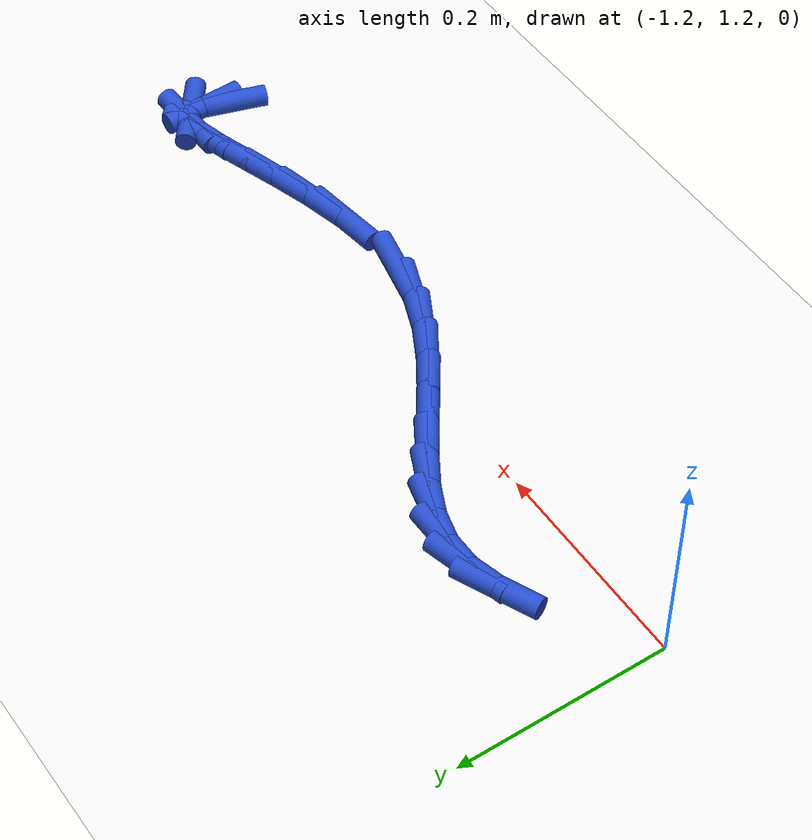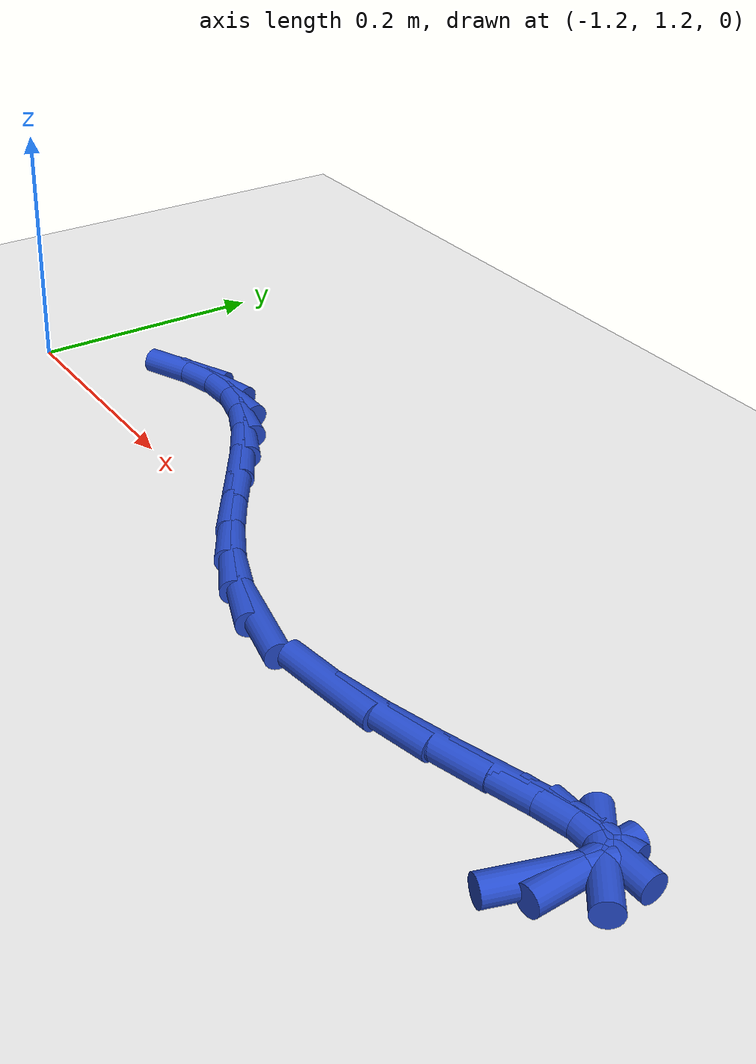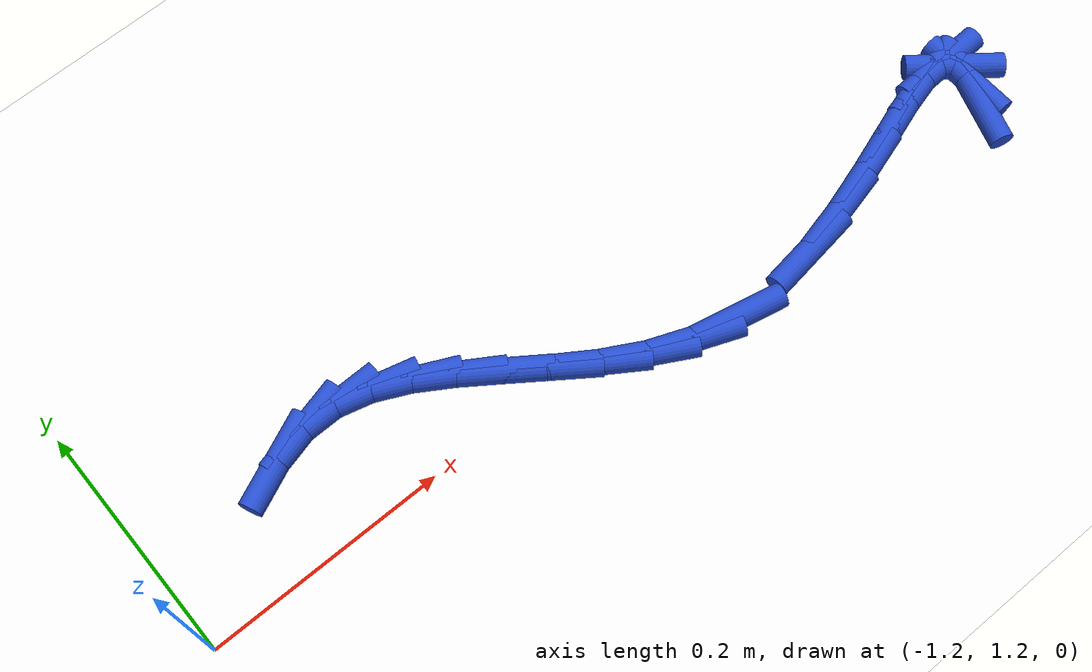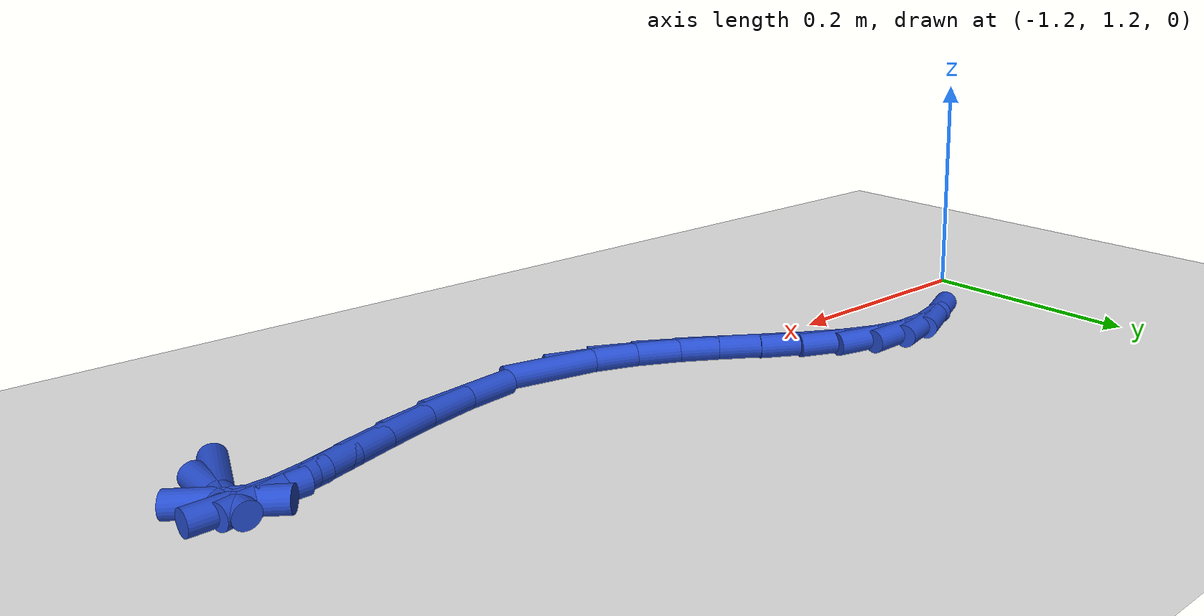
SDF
<sdf version="1.6">
 <world name="default">
  <model name="ground_plane">
   <static>1</static>
   <link name="link">
    <collision name="collision">
     <geometry><plane><normal>0 0 1</normal><size>100 100</size></plane></geometry>
     <surface><friction><ode><mu>100</mu><mu2>50</mu2></ode></friction></surface>
    </collision>
    <visual name="visual">
     <cast_shadows>0</cast_shadows>
     <geometry><plane><normal>0 0 1</normal><size>100 100</size></plane></geometry>
     <material>
      <script><uri>file://media/materials/scripts/gazebo.material</uri><name>Gazebo/WhiteGlow</name></script>
     </material>
    </visual>
   </link>
  </model>
  <model name="line">
   <link name="link_42">
    <pose>-0.4775105238854435 1.1648302483655897 0.01 0 1.57 1.2713334405244971</pose>
    <collision name="collision">
     <geometry><cylinder><radius>0.01</radius><length>0.08</length></cylinder></geometry>
    </collision>
    <visual name="visual">
     <material>
      <script><name>Gazebo/Blue</name><uri>file://media/materials/scripts/gazebo.material</uri></script>
     </material>
     <geometry><cylinder><radius>0.01</radius><length>0.08</length></cylinder></geometry>
    </visual>
   </link>
   <link name="link_43">
    <pose>-0.47127068288928786 1.1850404012252314 0.01 0 1.57 -1.5265808063890085</pose>
    <collision name="collision">
     <geometry><cylinder><radius>0.01</radius><length>0.08</length></cylinder></geometry>
    </collision>
    <visual name="visual">
     <material>
      <script><name>Gazebo/Blue</name><uri>file://media/materials/scripts/gazebo.material</uri></script>
     </material>
     <geometry><cylinder><radius>0.01</radius><length>0.08</length></cylinder></geometry>
    </visual>
   </link>
   <link name="link_44">
    <pose>-0.4718849292884951 1.1989234462506209 0.01 0 1.57 -0.6590452512910231</pose>
    <collision name="collision">
     <geometry><cylinder><radius>0.01</radius><length>0.08</length></cylinder></geometry>
    </collision>
    <visual name="visual">
     <material>
      <script><name>Gazebo/Blue</name><uri>file://media/materials/scripts/gazebo.material</uri></script>
     </material>
     <geometry><cylinder><radius>0.01</radius><length>0.08</length></cylinder></geometry>
    </visual>
   </link>
   <link name="link_45">
    <pose>-0.4805832748494404 1.2056609778249119 0.01 0 1.57 0.03743367609186603</pose>
    <collision name="collision">
     <geometry><cylinder><radius>0.01</radius><length>0.08</length></cylinder></geometry>
    </collision>
    <visual name="visual">
     <material>
      <script><name>Gazebo/Blue</name><uri>file://media/materials/scripts/gazebo.material</uri></script>
     </material>
     <geometry><cylinder><radius>0.01</radius><length>0.08</length></cylinder></geometry>
    </visual>
   </link>
   <link name="link_46">
    <pose>-0.4980362782983033 1.2050073424096837 0.01 0 1.57 0.2513064341759677</pose>
    <collision name="collision">
     <geometry><cylinder><radius>0.01</radius><length>0.08</length></cylinder></geometry>
    </collision>
    <visual name="visual">
     <material>
      <script><name>Gazebo/Blue</name><uri>file://media/materials/scripts/gazebo.material</uri></script>
     </material>
     <geometry><cylinder><radius>0.01</radius><length>0.08</length></cylinder></geometry>
    </visual>
   </link>
   <link name="link_47">
    <pose>-0.5231024578715252 1.198572001877682 0.01 0 1.57 0.31718513528585807</pose>
    <collision name="collision">
     <geometry><cylinder><radius>0.01</radius><length>0.08</length></cylinder></geometry>
    </collision>
    <visual name="visual">
     <material>
      <script><name>Gazebo/Blue</name><uri>file://media/materials/scripts/gazebo.material</uri></script>
     </material>
     <geometry><cylinder><radius>0.01</radius><length>0.08</length></cylinder></geometry>
    </visual>
   </link>
   <link name="link_48">
    <pose>-0.5542741236470079 1.1883393315776178 0.01 0 1.57 0.3248288836402233</pose>
    <collision name="collision">
     <geometry><cylinder><radius>0.01</radius><length>0.08</length></cylinder></geometry>
    </collision>
    <visual name="visual">
     <material>
      <script><name>Gazebo/Blue</name><uri>file://media/materials/scripts/gazebo.material</uri></script>
     </material>
     <geometry><cylinder><radius>0.01</radius><length>0.08</length></cylinder></geometry>
    </visual>
   </link>
   <link name="link_49">
    <pose>-0.5900435857026539 1.1762937068582036 0.01 0 1.57 0.29655632443599317</pose>
    <collision name="collision">
     <geometry><cylinder><radius>0.01</radius><length>0.08</length></cylinder></geometry>
    </collision>
    <visual name="visual">
     <material>
      <script><name>Gazebo/Blue</name><uri>file://media/materials/scripts/gazebo.material</uri></script>
     </material>
     <geometry><cylinder><radius>0.01</radius><length>0.08</length></cylinder></geometry>
    </visual>
   </link>
   <link name="link_50">
    <pose>-0.6289031541163659 1.1644195030681506 0.01 0 1.57 0.23583326406208197</pose>
    <collision name="collision">
     <geometry><cylinder><radius>0.01</radius><length>0.08</length></cylinder></geometry>
    </collision>
    <visual name="visual">
     <material>
      <script><name>Gazebo/Blue</name><uri>file://media/materials/scripts/gazebo.material</uri></script>
     </material>
     <geometry><cylinder><radius>0.01</radius><length>0.08</length></cylinder></geometry>
    </visual>
   </link>
   <link name="link_51">
    <pose>-0.6693451389660456 1.1547010955561705 0.01 0 1.57 0.136817276472193</pose>
    <collision name="collision">
     <geometry><cylinder><radius>0.01</radius><length>0.08</length></cylinder></geometry>
    </collision>
    <visual name="visual">
     <material>
      <script><name>Gazebo/Blue</name><uri>file://media/materials/scripts/gazebo.material</uri></script>
     </material>
     <geometry><cylinder><radius>0.01</radius><length>0.08</length></cylinder></geometry>
    </visual>
   </link>
   <link name="link_53">
    <pose>-0.7489469349420264 1.1496665386213587 0.01 0 1.57 -0.20713527541361673</pose>
    <collision name="collision">
     <geometry><cylinder><radius>0.01</radius><length>0.08</length></cylinder></geometry>
    </collision>
    <visual name="visual">
     <material>
      <script><name>Gazebo/Blue</name><uri>file://media/materials/scripts/gazebo.material</uri></script>
     </material>
     <geometry><cylinder><radius>0.01</radius><length>0.08</length></cylinder></geometry>
    </visual>
   </link>
   <link name="link_54">
    <pose>-0.785576314988455 1.1573641806980128 0.01 0 1.57 -0.3752574113976</pose>
    <collision name="collision">
     <geometry><cylinder><radius>0.01</radius><length>0.08</length></cylinder></geometry>
    </collision>
    <visual name="visual">
     <material>
      <script><name>Gazebo/Blue</name><uri>file://media/materials/scripts/gazebo.material</uri></script>
     </material>
     <geometry><cylinder><radius>0.01</radius><length>0.08</length></cylinder></geometry>
    </visual>
   </link>
   <link name="link_55">
    <pose>-0.8199214654390802 1.1708935563529599 0.01 0 1.57 -0.4993399005876167</pose>
    <collision name="collision">
     <geometry><cylinder><radius>0.01</radius><length>0.08</length></cylinder></geometry>
    </collision>
    <visual name="visual">
     <material>
      <script><name>Gazebo/Blue</name><uri>file://media/materials/scripts/gazebo.material</uri></script>
     </material>
     <geometry><cylinder><radius>0.01</radius><length>0.08</length></cylinder></geometry>
    </visual>
   </link>
   <link name="link_56">
    <pose>-0.8523359381512009 1.1885738909488006 0.01 0 1.57 -0.5787934021531784</pose>
    <collision name="collision">
     <geometry><cylinder><radius>0.01</radius><length>0.08</length></cylinder></geometry>
    </collision>
    <visual name="visual">
     <material>
      <script><name>Gazebo/Blue</name><uri>file://media/materials/scripts/gazebo.material</uri></script>
     </material>
     <geometry><cylinder><radius>0.01</radius><length>0.08</length></cylinder></geometry>
    </visual>
   </link>
   <link name="link_57">
    <pose>-0.883173284982117 1.208724409848137 0.01 0 1.57 -0.6154758590339563</pose>
    <collision name="collision">
     <geometry><cylinder><radius>0.01</radius><length>0.08</length></cylinder></geometry>
    </collision>
    <visual name="visual">
     <material>
      <script><name>Gazebo/Blue</name><uri>file://media/materials/scripts/gazebo.material</uri></script>
     </material>
     <geometry><cylinder><radius>0.01</radius><length>0.08</length></cylinder></geometry>
    </visual>
   </link>
   <link name="link_58">
    <pose>-0.9127870577891284 1.22966433841357 0.01 0 1.57 -0.6090414018737079</pose>
    <collision name="collision">
     <geometry><cylinder><radius>0.01</radius><length>0.08</length></cylinder></geometry>
    </collision>
    <visual name="visual">
     <material>
      <script><name>Gazebo/Blue</name><uri>file://media/materials/scripts/gazebo.material</uri></script>
     </material>
     <geometry><cylinder><radius>0.01</radius><length>0.08</length></cylinder></geometry>
    </visual>
   </link>
   <link name="link_59">
    <pose>-0.9415308084295343 1.2497129020077016 0.01 0 1.57 -0.5543687906518694</pose>
    <collision name="collision">
     <geometry><cylinder><radius>0.01</radius><length>0.08</length></cylinder></geometry>
    </collision>
    <visual name="visual">
     <material>
      <script><name>Gazebo/Blue</name><uri>file://media/materials/scripts/gazebo.material</uri></script>
     </material>
     <geometry><cylinder><radius>0.01</radius><length>0.08</length></cylinder></geometry>
    </visual>
   </link>
   <link name="link_60">
    <pose>-0.9697580887606341 1.2671893259931326 0.01 0 1.57 -0.44033113864854867</pose>
    <collision name="collision">
     <geometry><cylinder><radius>0.01</radius><length>0.08</length></cylinder></geometry>
    </collision>
    <visual name="visual">
     <material>
      <script><name>Gazebo/Blue</name><uri>file://media/materials/scripts/gazebo.material</uri></script>
     </material>
     <geometry><cylinder><radius>0.01</radius><length>0.08</length></cylinder></geometry>
    </visual>
   </link>
   <link name="link_61">
    <pose>-0.9978224506397275 1.2804128357324647 0.01 0 1.57 -0.25249485129466703</pose>
    <collision name="collision">
     <geometry><cylinder><radius>0.01</radius><length>0.08</length></cylinder></geometry>
    </collision>
    <visual name="visual">
     <material>
      <script><name>Gazebo/Blue</name><uri>file://media/materials/scripts/gazebo.material</uri></script>
     </material>
     <geometry><cylinder><radius>0.01</radius><length>0.08</length></cylinder></geometry>
    </visual>
   </link>
   <link name="link_62">
    <pose>-1.0260774459241144 1.2877026565882996 0.01 0 1.57 0.008734874273873747</pose>
    <collision name="collision">
     <geometry><cylinder><radius>0.01</radius><length>0.08</length></cylinder></geometry>
    </collision>
    <visual name="visual">
     <material>
      <script><name>Gazebo/Blue</name><uri>file://media/materials/scripts/gazebo.material</uri></script>
     </material>
     <geometry><cylinder><radius>0.01</radius><length>0.08</length></cylinder></geometry>
    </visual>
   </link>
   <link name="link_63">
    <pose>-1.0548682119819996 1.2874511664704362 0.01 0 1.57 0.2566535131797015</pose>
    <collision name="collision">
     <geometry><cylinder><radius>0.01</radius><length>0.08</length></cylinder></geometry>
    </collision>
    <visual name="visual">
     <material>
      <script><name>Gazebo/Blue</name><uri>file://media/materials/scripts/gazebo.material</uri></script>
     </material>
     <geometry><cylinder><radius>0.01</radius><length>0.08</length></cylinder></geometry>
    </visual>
   </link>
   <link name="link_64">
    <pose>-1.084348531764848 1.2797143098873314 0.01 0 1.57 0.4215586029194371</pose>
    <collision name="collision">
     <geometry><cylinder><radius>0.01</radius><length>0.08</length></cylinder></geometry>
    </collision>
    <visual name="visual">
     <material>
      <script><name>Gazebo/Blue</name><uri>file://media/materials/scripts/gazebo.material</uri></script>
     </material>
     <geometry><cylinder><radius>0.01</radius><length>0.08</length></cylinder></geometry>
    </visual>
   </link>
  </model>
 </world>
</sdf>
